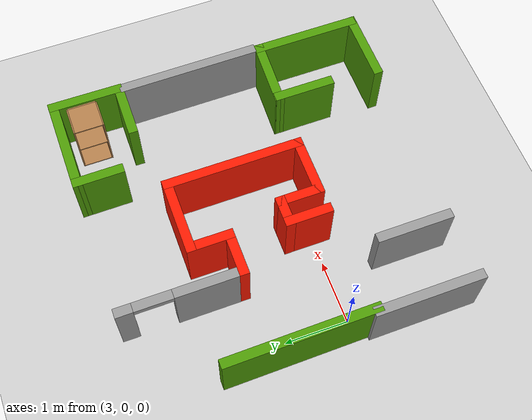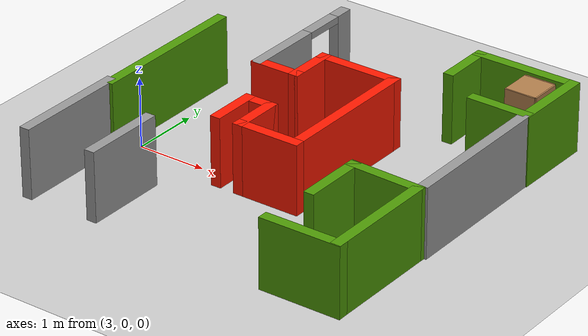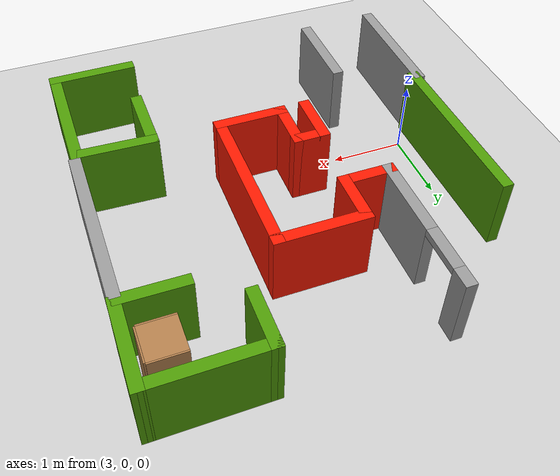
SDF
<sdf version="1.6">
 <world name="default">
  <model name="ground_plane">
   <static>1</static>
   <link name="link">
    <collision name="collision">
     <geometry><plane><normal>0 0 1</normal><size>100 100</size></plane></geometry>
     <surface><friction><ode><mu>100</mu><mu2>50</mu2></ode></friction></surface>
    </collision>
    <visual name="visual">
     <cast_shadows>0</cast_shadows>
     <geometry><plane><normal>0 0 1</normal><size>100 100</size></plane></geometry>
     <material>
      <script><uri>file://media/materials/scripts/gazebo.material</uri><name>Gazebo/Grey</name></script>
     </material>
    </visual>
   </link>
  </model>
  <model name="final_maze_v2">
   <link name="Wall_29">
    <pose>0.877343 -1.70359 0 0 0 -1.5708</pose>
    <inertial>
     <inertia><ixx>0</ixx><ixy>0</ixy><ixz>0</ixz><iyy>0</iyy><iyz>0</iyz><izz>0</izz></inertia>
     <mass>0</mass>
    </inertial>
    <visual name="Wall_29_Visual">
     <pose>0 0 0.5 0 -0 0</pose>
     <geometry><box><size>1.71998 0.15 1</size></box></geometry>
     <material>
      <script><uri>file://media/materials/scripts/gazebo.material</uri><name>Gazebo/Grey</name></script>
      <ambient>1 1 1 1</ambient>
      <shader type="pixel"/>
     </material>
     <meta><layer>0</layer></meta>
    </visual>
    <collision name="Wall_29_Collision">
     <pose>0 0 0.5 0 -0 0</pose>
     <geometry><box><size>1.71998 0.15 1</size></box></geometry>
     <surface>
      <friction>
       <ode><mu>1</mu><mu2>1</mu2><fdir1>0 0 0</fdir1><slip1>0</slip1><slip2>0</slip2></ode>
       <torsional>
        <coefficient>1</coefficient>
        <patch_radius>0</patch_radius>
        <surface_radius>0</surface_radius>
        <use_patch_radius>1</use_patch_radius>
        <ode><slip>0</slip></ode>
       </torsional>
      </friction>
      <bounce><restitution_coefficient>0</restitution_coefficient><threshold>1e+06</threshold></bounce>
      <contact>
       <collide_without_contact>0</collide_without_contact>
       <collide_without_contact_bitmask>1</collide_without_contact_bitmask>
       <collide_bitmask>1</collide_bitmask>
       <ode>
        <soft_cfm>0</soft_cfm>
        <soft_erp>0.2</soft_erp>
        <kp>1e+13</kp>
        <kd>1</kd>
        <max_vel>0.01</max_vel>
        <min_depth>0</min_depth>
       </ode>
       <bullet>
        <split_impulse>1</split_impulse>
        <split_impulse_penetration_threshold>-0.01</split_impulse_penetration_threshold>
        <soft_cfm>0</soft_cfm>
        <soft_erp>0.2</soft_erp>
        <kp>1e+13</kp>
        <kd>1</kd>
       </bullet>
      </contact>
     </surface>
    </collision>
   </link>
   <link name="Wall_29_clone">
    <pose>1.90614 -1.93473 0 0 0 -1.5708</pose>
    <inertial>
     <inertia><ixx>0</ixx><ixy>0</ixy><ixz>0</ixz><iyy>0</iyy><iyz>0</iyz><izz>0</izz></inertia>
     <mass>0</mass>
    </inertial>
    <visual name="Wall_29_Visual">
     <pose>0 0 0.5 0 -0 0</pose>
     <geometry><box><size>1.20691 0.15 1</size></box></geometry>
     <material>
      <script><uri>file://media/materials/scripts/gazebo.material</uri><name>Gazebo/Grey</name></script>
      <ambient>1 1 1 1</ambient>
      <shader type="pixel"/>
     </material>
     <meta><layer>0</layer></meta>
    </visual>
    <collision name="Wall_29_Collision">
     <pose>0 0 0.5 0 -0 0</pose>
     <geometry><box><size>1.20691 0.15 1</size></box></geometry>
     <surface>
      <friction>
       <ode><mu>1</mu><mu2>1</mu2><fdir1>0 0 0</fdir1><slip1>0</slip1><slip2>0</slip2></ode>
       <torsional>
        <coefficient>1</coefficient>
        <patch_radius>0</patch_radius>
        <surface_radius>0</surface_radius>
        <use_patch_radius>1</use_patch_radius>
        <ode><slip>0</slip></ode>
       </torsional>
      </friction>
      <bounce><restitution_coefficient>0</restitution_coefficient><threshold>1e+06</threshold></bounce>
      <contact>
       <collide_without_contact>0</collide_without_contact>
       <collide_without_contact_bitmask>1</collide_without_contact_bitmask>
       <collide_bitmask>1</collide_bitmask>
       <ode>
        <soft_cfm>0</soft_cfm>
        <soft_erp>0.2</soft_erp>
        <kp>1e+13</kp>
        <kd>1</kd>
        <max_vel>0.01</max_vel>
        <min_depth>0</min_depth>
       </ode>
       <bullet>
        <split_impulse>1</split_impulse>
        <split_impulse_penetration_threshold>-0.01</split_impulse_penetration_threshold>
        <soft_cfm>0</soft_cfm>
        <soft_erp>0.2</soft_erp>
        <kp>1e+13</kp>
        <kd>1</kd>
       </bullet>
      </contact>
     </surface>
    </collision>
   </link>
   <link name="Wall_39">
    <pose>2.10527 1.58161 0 0 0 -1.5708</pose>
    <visual name="Wall_39_Visual_0">
     <pose>-0.864385 0 0.5 0 -0 0</pose>
     <geometry><box><size>0.27123 0.15 1</size></box></geometry>
     <material>
      <script><uri>file://media/materials/scripts/gazebo.material</uri><name>Gazebo/Grey</name></script>
      <ambient>1 1 1 1</ambient>
      <shader type="pixel"/>
     </material>
     <meta><layer>0</layer></meta>
    </visual>
    <visual name="Wall_39_Visual_1">
     <pose>0.435615 0 0.5 0 -0 0</pose>
     <geometry><box><size>1.12877 0.15 1</size></box></geometry>
     <material>
      <script><uri>file://media/materials/scripts/gazebo.material</uri><name>Gazebo/Grey</name></script>
      <ambient>1 1 1 1</ambient>
      <shader type="pixel"/>
     </material>
     <meta><layer>0</layer></meta>
    </visual>
    <visual name="Wall_39_Visual_2">
     <pose>-0.42877 0 0.95 0 -0 0</pose>
     <geometry><box><size>0.6 0.15 0.1</size></box></geometry>
     <material>
      <script><uri>file://media/materials/scripts/gazebo.material</uri><name>Gazebo/Grey</name></script>
      <ambient>1 1 1 1</ambient>
      <shader type="pixel"/>
     </material>
     <meta><layer>0</layer></meta>
    </visual>
    <collision name="Wall_39_Collision_2">
     <pose>-0.42877 0 0.95 0 -0 0</pose>
     <geometry><box><size>0.6 0.15 0.1</size></box></geometry>
     <surface>
      <friction>
       <ode><mu>1</mu><mu2>1</mu2><fdir1>0 0 0</fdir1><slip1>0</slip1><slip2>0</slip2></ode>
       <torsional>
        <coefficient>1</coefficient>
        <patch_radius>0</patch_radius>
        <surface_radius>0</surface_radius>
        <use_patch_radius>1</use_patch_radius>
        <ode><slip>0</slip></ode>
       </torsional>
      </friction>
      <bounce><restitution_coefficient>0</restitution_coefficient><threshold>1e+06</threshold></bounce>
      <contact>
       <collide_without_contact>0</collide_without_contact>
       <collide_without_contact_bitmask>1</collide_without_contact_bitmask>
       <collide_bitmask>1</collide_bitmask>
       <ode>
        <soft_cfm>0</soft_cfm>
        <soft_erp>0.2</soft_erp>
        <kp>1e+13</kp>
        <kd>1</kd>
        <max_vel>0.01</max_vel>
        <min_depth>0</min_depth>
       </ode>
       <bullet>
        <split_impulse>1</split_impulse>
        <split_impulse_penetration_threshold>-0.01</split_impulse_penetration_threshold>
        <soft_cfm>0</soft_cfm>
        <soft_erp>0.2</soft_erp>
        <kp>1e+13</kp>
        <kd>1</kd>
       </bullet>
      </contact>
     </surface>
    </collision>
    <collision name="Wall_39_Collision_0">
     <pose>-0.864385 0 0.5 0 -0 0</pose>
     <geometry><box><size>0.27123 0.15 1</size></box></geometry>
     <surface>
      <friction>
       <ode><mu>1</mu><mu2>1</mu2><fdir1>0 0 0</fdir1><slip1>0</slip1><slip2>0</slip2></ode>
       <torsional>
        <coefficient>1</coefficient>
        <patch_radius>0</patch_radius>
        <surface_radius>0</surface_radius>
        <use_patch_radius>1</use_patch_radius>
        <ode><slip>0</slip></ode>
       </torsional>
      </friction>
      <bounce><restitution_coefficient>0</restitution_coefficient><threshold>1e+06</threshold></bounce>
      <contact>
       <collide_without_contact>0</collide_without_contact>
       <collide_without_contact_bitmask>1</collide_without_contact_bitmask>
       <collide_bitmask>1</collide_bitmask>
       <ode>
        <soft_cfm>0</soft_cfm>
        <soft_erp>0.2</soft_erp>
        <kp>1e+13</kp>
        <kd>1</kd>
        <max_vel>0.01</max_vel>
        <min_depth>0</min_depth>
       </ode>
       <bullet>
        <split_impulse>1</split_impulse>
        <split_impulse_penetration_threshold>-0.01</split_impulse_penetration_threshold>
        <soft_cfm>0</soft_cfm>
        <soft_erp>0.2</soft_erp>
        <kp>1e+13</kp>
        <kd>1</kd>
       </bullet>
      </contact>
     </surface>
    </collision>
    <collision name="Wall_39_Collision_1">
     <pose>0.435615 0 0.5 0 -0 0</pose>
     <geometry><box><size>1.12877 0.15 1</size></box></geometry>
     <surface>
      <friction>
       <ode><mu>1</mu><mu2>1</mu2><fdir1>0 0 0</fdir1><slip1>0</slip1><slip2>0</slip2></ode>
       <torsional>
        <coefficient>1</coefficient>
        <patch_radius>0</patch_radius>
        <surface_radius>0</surface_radius>
        <use_patch_radius>1</use_patch_radius>
        <ode><slip>0</slip></ode>
       </torsional>
      </friction>
      <bounce><restitution_coefficient>0</restitution_coefficient><threshold>1e+06</threshold></bounce>
      <contact>
       <collide_without_contact>0</collide_without_contact>
       <collide_without_contact_bitmask>1</collide_without_contact_bitmask>
       <collide_bitmask>1</collide_bitmask>
       <ode>
        <soft_cfm>0</soft_cfm>
        <soft_erp>0.2</soft_erp>
        <kp>1e+13</kp>
        <kd>1</kd>
        <max_vel>0.01</max_vel>
        <min_depth>0</min_depth>
       </ode>
       <bullet>
        <split_impulse>1</split_impulse>
        <split_impulse_penetration_threshold>-0.01</split_impulse_penetration_threshold>
        <soft_cfm>0</soft_cfm>
        <soft_erp>0.2</soft_erp>
        <kp>1e+13</kp>
        <kd>1</kd>
       </bullet>
      </contact>
     </surface>
    </collision>
   </link>
   <link name="Wall_40">
    <pose>2.40526 0.656606 0 0 -0 0</pose>
    <visual name="Wall_40_Visual">
     <pose>0 0 0.5 0 -0 0</pose>
     <geometry><box><size>0.75 0.15 1</size></box></geometry>
     <material>
      <script><uri>file://media/materials/scripts/gazebo.material</uri><name>Gazebo/Grey</name></script>
      <ambient>1 0.0980392 0 1</ambient>
      <shader type="pixel"/>
     </material>
     <meta><layer>0</layer></meta>
    </visual>
    <collision name="Wall_40_Collision">
     <pose>0 0 0.5 0 -0 0</pose>
     <geometry><box><size>0.75 0.15 1</size></box></geometry>
     <surface>
      <friction>
       <ode><mu>1</mu><mu2>1</mu2><fdir1>0 0 0</fdir1><slip1>0</slip1><slip2>0</slip2></ode>
       <torsional>
        <coefficient>1</coefficient>
        <patch_radius>0</patch_radius>
        <surface_radius>0</surface_radius>
        <use_patch_radius>1</use_patch_radius>
        <ode><slip>0</slip></ode>
       </torsional>
      </friction>
      <bounce><restitution_coefficient>0</restitution_coefficient><threshold>1e+06</threshold></bounce>
      <contact>
       <collide_without_contact>0</collide_without_contact>
       <collide_without_contact_bitmask>1</collide_without_contact_bitmask>
       <collide_bitmask>1</collide_bitmask>
       <ode>
        <soft_cfm>0</soft_cfm>
        <soft_erp>0.2</soft_erp>
        <kp>1e+13</kp>
        <kd>1</kd>
        <max_vel>0.01</max_vel>
        <min_depth>0</min_depth>
       </ode>
       <bullet>
        <split_impulse>1</split_impulse>
        <split_impulse_penetration_threshold>-0.01</split_impulse_penetration_threshold>
        <soft_cfm>0</soft_cfm>
        <soft_erp>0.2</soft_erp>
        <kp>1e+13</kp>
        <kd>1</kd>
       </bullet>
      </contact>
     </surface>
    </collision>
   </link>
   <link name="Wall_41">
    <pose>2.70526 0.956606 0 0 -0 1.5708</pose>
    <visual name="Wall_41_Visual">
     <pose>0 0 0.5 0 -0 0</pose>
     <geometry><box><size>0.75 0.15 1</size></box></geometry>
     <material>
      <script><uri>file://media/materials/scripts/gazebo.material</uri><name>Gazebo/Grey</name></script>
      <ambient>1 0.0980392 0 1</ambient>
      <shader type="pixel"/>
     </material>
     <meta><layer>0</layer></meta>
    </visual>
    <collision name="Wall_41_Collision">
     <pose>0 0 0.5 0 -0 0</pose>
     <geometry><box><size>0.75 0.15 1</size></box></geometry>
     <surface>
      <friction>
       <ode><mu>1</mu><mu2>1</mu2><fdir1>0 0 0</fdir1><slip1>0</slip1><slip2>0</slip2></ode>
       <torsional>
        <coefficient>1</coefficient>
        <patch_radius>0</patch_radius>
        <surface_radius>0</surface_radius>
        <use_patch_radius>1</use_patch_radius>
        <ode><slip>0</slip></ode>
       </torsional>
      </friction>
      <bounce><restitution_coefficient>0</restitution_coefficient><threshold>1e+06</threshold></bounce>
      <contact>
       <collide_without_contact>0</collide_without_contact>
       <collide_without_contact_bitmask>1</collide_without_contact_bitmask>
       <collide_bitmask>1</collide_bitmask>
       <ode>
        <soft_cfm>0</soft_cfm>
        <soft_erp>0.2</soft_erp>
        <kp>1e+13</kp>
        <kd>1</kd>
        <max_vel>0.01</max_vel>
        <min_depth>0</min_depth>
       </ode>
       <bullet>
        <split_impulse>1</split_impulse>
        <split_impulse_penetration_threshold>-0.01</split_impulse_penetration_threshold>
        <soft_cfm>0</soft_cfm>
        <soft_erp>0.2</soft_erp>
        <kp>1e+13</kp>
        <kd>1</kd>
       </bullet>
      </contact>
     </surface>
    </collision>
   </link>
   <link name="Wall_42">
    <pose>3.25527 1.25661 0 0 -0 0</pose>
    <visual name="Wall_42_Visual">
     <pose>0 0 0.5 0 -0 0</pose>
     <geometry><box><size>1.25 0.15 1</size></box></geometry>
     <material>
      <script><uri>file://media/materials/scripts/gazebo.material</uri><name>Gazebo/Grey</name></script>
      <ambient>1 0.0980392 0 1</ambient>
      <shader type="pixel"/>
     </material>
     <meta><layer>0</layer></meta>
    </visual>
    <collision name="Wall_42_Collision">
     <pose>0 0 0.5 0 -0 0</pose>
     <geometry><box><size>1.25 0.15 1</size></box></geometry>
     <surface>
      <friction>
       <ode><mu>1</mu><mu2>1</mu2><fdir1>0 0 0</fdir1><slip1>0</slip1><slip2>0</slip2></ode>
       <torsional>
        <coefficient>1</coefficient>
        <patch_radius>0</patch_radius>
        <surface_radius>0</surface_radius>
        <use_patch_radius>1</use_patch_radius>
        <ode><slip>0</slip></ode>
       </torsional>
      </friction>
      <bounce><restitution_coefficient>0</restitution_coefficient><threshold>1e+06</threshold></bounce>
      <contact>
       <collide_without_contact>0</collide_without_contact>
       <collide_without_contact_bitmask>1</collide_without_contact_bitmask>
       <collide_bitmask>1</collide_bitmask>
       <ode>
        <soft_cfm>0</soft_cfm>
        <soft_erp>0.2</soft_erp>
        <kp>1e+13</kp>
        <kd>1</kd>
        <max_vel>0.01</max_vel>
        <min_depth>0</min_depth>
       </ode>
       <bullet>
        <split_impulse>1</split_impulse>
        <split_impulse_penetration_threshold>-0.01</split_impulse_penetration_threshold>
        <soft_cfm>0</soft_cfm>
        <soft_erp>0.2</soft_erp>
        <kp>1e+13</kp>
        <kd>1</kd>
       </bullet>
      </contact>
     </surface>
    </collision>
   </link>
   <link name="Wall_43">
    <pose>3.80526 0.206606 0 0 0 -1.5708</pose>
    <visual name="Wall_43_Visual">
     <pose>0 0 0.5 0 -0 0</pose>
     <geometry><box><size>2.25 0.15 1</size></box></geometry>
     <material>
      <script><uri>file://media/materials/scripts/gazebo.material</uri><name>Gazebo/Grey</name></script>
      <ambient>1 0.0980392 0 1</ambient>
      <shader type="pixel"/>
     </material>
     <meta><layer>0</layer></meta>
    </visual>
    <collision name="Wall_43_Collision">
     <pose>0 0 0.5 0 -0 0</pose>
     <geometry><box><size>2.25 0.15 1</size></box></geometry>
     <surface>
      <friction>
       <ode><mu>1</mu><mu2>1</mu2><fdir1>0 0 0</fdir1><slip1>0</slip1><slip2>0</slip2></ode>
       <torsional>
        <coefficient>1</coefficient>
        <patch_radius>0</patch_radius>
        <surface_radius>0</surface_radius>
        <use_patch_radius>1</use_patch_radius>
        <ode><slip>0</slip></ode>
       </torsional>
      </friction>
      <bounce><restitution_coefficient>0</restitution_coefficient><threshold>1e+06</threshold></bounce>
      <contact>
       <collide_without_contact>0</collide_without_contact>
       <collide_without_contact_bitmask>1</collide_without_contact_bitmask>
       <collide_bitmask>1</collide_bitmask>
       <ode>
        <soft_cfm>0</soft_cfm>
        <soft_erp>0.2</soft_erp>
        <kp>1e+13</kp>
        <kd>1</kd>
        <max_vel>0.01</max_vel>
        <min_depth>0</min_depth>
       </ode>
       <bullet>
        <split_impulse>1</split_impulse>
        <split_impulse_penetration_threshold>-0.01</split_impulse_penetration_threshold>
        <soft_cfm>0</soft_cfm>
        <soft_erp>0.2</soft_erp>
        <kp>1e+13</kp>
        <kd>1</kd>
       </bullet>
      </contact>
     </surface>
    </collision>
   </link>
   <link name="Wall_44">
    <pose>3.38027 -0.843394 0 0 -0 3.14159</pose>
    <visual name="Wall_44_Visual">
     <pose>0 0 0.5 0 -0 0</pose>
     <geometry><box><size>1 0.15 1</size></box></geometry>
     <material>
      <script><uri>file://media/materials/scripts/gazebo.material</uri><name>Gazebo/Grey</name></script>
      <ambient>1 0.0980392 0 1</ambient>
      <shader type="pixel"/>
     </material>
     <meta><layer>0</layer></meta>
    </visual>
    <collision name="Wall_44_Collision">
     <pose>0 0 0.5 0 -0 0</pose>
     <geometry><box><size>1 0.15 1</size></box></geometry>
     <surface>
      <friction>
       <ode><mu>1</mu><mu2>1</mu2><fdir1>0 0 0</fdir1><slip1>0</slip1><slip2>0</slip2></ode>
       <torsional>
        <coefficient>1</coefficient>
        <patch_radius>0</patch_radius>
        <surface_radius>0</surface_radius>
        <use_patch_radius>1</use_patch_radius>
        <ode><slip>0</slip></ode>
       </torsional>
      </friction>
      <bounce><restitution_coefficient>0</restitution_coefficient><threshold>1e+06</threshold></bounce>
      <contact>
       <collide_without_contact>0</collide_without_contact>
       <collide_without_contact_bitmask>1</collide_without_contact_bitmask>
       <collide_bitmask>1</collide_bitmask>
       <ode>
        <soft_cfm>0</soft_cfm>
        <soft_erp>0.2</soft_erp>
        <kp>1e+13</kp>
        <kd>1</kd>
        <max_vel>0.01</max_vel>
        <min_depth>0</min_depth>
       </ode>
       <bullet>
        <split_impulse>1</split_impulse>
        <split_impulse_penetration_threshold>-0.01</split_impulse_penetration_threshold>
        <soft_cfm>0</soft_cfm>
        <soft_erp>0.2</soft_erp>
        <kp>1e+13</kp>
        <kd>1</kd>
       </bullet>
      </contact>
     </surface>
    </collision>
   </link>
   <link name="Wall_45">
    <pose>2.95526 -0.543394 0 0 -0 1.5708</pose>
    <visual name="Wall_45_Visual">
     <pose>0 0 0.5 0 -0 0</pose>
     <geometry><box><size>0.75 0.15 1</size></box></geometry>
     <material>
      <script><uri>file://media/materials/scripts/gazebo.material</uri><name>Gazebo/Grey</name></script>
      <ambient>1 0.0980392 0 1</ambient>
      <shader type="pixel"/>
     </material>
     <meta><layer>0</layer></meta>
    </visual>
    <collision name="Wall_45_Collision">
     <pose>0 0 0.5 0 -0 0</pose>
     <geometry><box><size>0.75 0.15 1</size></box></geometry>
     <surface>
      <friction>
       <ode><mu>1</mu><mu2>1</mu2><fdir1>0 0 0</fdir1><slip1>0</slip1><slip2>0</slip2></ode>
       <torsional>
        <coefficient>1</coefficient>
        <patch_radius>0</patch_radius>
        <surface_radius>0</surface_radius>
        <use_patch_radius>1</use_patch_radius>
        <ode><slip>0</slip></ode>
       </torsional>
      </friction>
      <bounce><restitution_coefficient>0</restitution_coefficient><threshold>1e+06</threshold></bounce>
      <contact>
       <collide_without_contact>0</collide_without_contact>
       <collide_without_contact_bitmask>1</collide_without_contact_bitmask>
       <collide_bitmask>1</collide_bitmask>
       <ode>
        <soft_cfm>0</soft_cfm>
        <soft_erp>0.2</soft_erp>
        <kp>1e+13</kp>
        <kd>1</kd>
        <max_vel>0.01</max_vel>
        <min_depth>0</min_depth>
       </ode>
       <bullet>
        <split_impulse>1</split_impulse>
        <split_impulse_penetration_threshold>-0.01</split_impulse_penetration_threshold>
        <soft_cfm>0</soft_cfm>
        <soft_erp>0.2</soft_erp>
        <kp>1e+13</kp>
        <kd>1</kd>
       </bullet>
      </contact>
     </surface>
    </collision>
   </link>
   <link name="Wall_46">
    <pose>2.78026 -0.243394 0 0 -0 3.14159</pose>
    <visual name="Wall_46_Visual">
     <pose>0 0 0.5 0 -0 0</pose>
     <geometry><box><size>0.5 0.15 1</size></box></geometry>
     <material>
      <script><uri>file://media/materials/scripts/gazebo.material</uri><name>Gazebo/Grey</name></script>
      <ambient>1 0.0980392 0 1</ambient>
      <shader type="pixel"/>
     </material>
     <meta><layer>0</layer></meta>
    </visual>
    <collision name="Wall_46_Collision">
     <pose>0 0 0.5 0 -0 0</pose>
     <geometry><box><size>0.5 0.15 1</size></box></geometry>
     <surface>
      <friction>
       <ode><mu>1</mu><mu2>1</mu2><fdir1>0 0 0</fdir1><slip1>0</slip1><slip2>0</slip2></ode>
       <torsional>
        <coefficient>1</coefficient>
        <patch_radius>0</patch_radius>
        <surface_radius>0</surface_radius>
        <use_patch_radius>1</use_patch_radius>
        <ode><slip>0</slip></ode>
       </torsional>
      </friction>
      <bounce><restitution_coefficient>0</restitution_coefficient><threshold>1e+06</threshold></bounce>
      <contact>
       <collide_without_contact>0</collide_without_contact>
       <collide_without_contact_bitmask>1</collide_without_contact_bitmask>
       <collide_bitmask>1</collide_bitmask>
       <ode>
        <soft_cfm>0</soft_cfm>
        <soft_erp>0.2</soft_erp>
        <kp>1e+13</kp>
        <kd>1</kd>
        <max_vel>0.01</max_vel>
        <min_depth>0</min_depth>
       </ode>
       <bullet>
        <split_impulse>1</split_impulse>
        <split_impulse_penetration_threshold>-0.01</split_impulse_penetration_threshold>
        <soft_cfm>0</soft_cfm>
        <soft_erp>0.2</soft_erp>
        <kp>1e+13</kp>
        <kd>1</kd>
       </bullet>
      </contact>
     </surface>
    </collision>
   </link>
   <link name="Wall_47">
    <pose>2.60527 -0.543394 0 0 0 -1.5708</pose>
    <visual name="Wall_47_Visual">
     <pose>0 0 0.5 0 -0 0</pose>
     <geometry><box><size>0.75 0.15 1</size></box></geometry>
     <material>
      <script><uri>file://media/materials/scripts/gazebo.material</uri><name>Gazebo/Grey</name></script>
      <ambient>1 0.0980392 0 1</ambient>
      <shader type="pixel"/>
     </material>
     <meta><layer>0</layer></meta>
    </visual>
    <collision name="Wall_47_Collision">
     <pose>0 0 0.5 0 -0 0</pose>
     <geometry><box><size>0.75 0.15 1</size></box></geometry>
     <surface>
      <friction>
       <ode><mu>1</mu><mu2>1</mu2><fdir1>0 0 0</fdir1><slip1>0</slip1><slip2>0</slip2></ode>
       <torsional>
        <coefficient>1</coefficient>
        <patch_radius>0</patch_radius>
        <surface_radius>0</surface_radius>
        <use_patch_radius>1</use_patch_radius>
        <ode><slip>0</slip></ode>
       </torsional>
      </friction>
      <bounce><restitution_coefficient>0</restitution_coefficient><threshold>1e+06</threshold></bounce>
      <contact>
       <collide_without_contact>0</collide_without_contact>
       <collide_without_contact_bitmask>1</collide_without_contact_bitmask>
       <collide_bitmask>1</collide_bitmask>
       <ode>
        <soft_cfm>0</soft_cfm>
        <soft_erp>0.2</soft_erp>
        <kp>1e+13</kp>
        <kd>1</kd>
        <max_vel>0.01</max_vel>
        <min_depth>0</min_depth>
       </ode>
       <bullet>
        <split_impulse>1</split_impulse>
        <split_impulse_penetration_threshold>-0.01</split_impulse_penetration_threshold>
        <soft_cfm>0</soft_cfm>
        <soft_erp>0.2</soft_erp>
        <kp>1e+13</kp>
        <kd>1</kd>
       </bullet>
      </contact>
     </surface>
    </collision>
   </link>
   <link name="Wall_5">
    <pose>5.69877 0.301308 0 0 -0 1.57478</pose>
    <inertial>
     <inertia><ixx>0</ixx><ixy>0</ixy><ixz>0</ixz><iyy>0</iyy><iyz>0</iyz><izz>0</izz></inertia>
     <mass>0</mass>
    </inertial>
    <visual name="Wall_5_Visual">
     <pose>0 0 0.5 0 -0 0</pose>
     <geometry><box><size>2.27649 0.15 1</size></box></geometry>
     <material>
      <script><uri>file://media/materials/scripts/gazebo.material</uri><name>Gazebo/Grey</name></script>
      <ambient>1 1 1 1</ambient>
      <shader type="pixel"/>
     </material>
     <meta><layer>0</layer></meta>
    </visual>
    <collision name="Wall_5_Collision">
     <pose>0 0 0.5 0 -0 0</pose>
     <geometry><box><size>2.27649 0.15 1</size></box></geometry>
     <surface>
      <friction>
       <ode><mu>1</mu><mu2>1</mu2><fdir1>0 0 0</fdir1><slip1>0</slip1><slip2>0</slip2></ode>
       <torsional>
        <coefficient>1</coefficient>
        <patch_radius>0</patch_radius>
        <surface_radius>0</surface_radius>
        <use_patch_radius>1</use_patch_radius>
        <ode><slip>0</slip></ode>
       </torsional>
      </friction>
      <bounce><restitution_coefficient>0</restitution_coefficient><threshold>1e+06</threshold></bounce>
      <contact>
       <collide_without_contact>0</collide_without_contact>
       <collide_without_contact_bitmask>1</collide_without_contact_bitmask>
       <collide_bitmask>1</collide_bitmask>
       <ode>
        <soft_cfm>0</soft_cfm>
        <soft_erp>0.2</soft_erp>
        <kp>1e+13</kp>
        <kd>1</kd>
        <max_vel>0.01</max_vel>
        <min_depth>0</min_depth>
       </ode>
       <bullet>
        <split_impulse>1</split_impulse>
        <split_impulse_penetration_threshold>-0.01</split_impulse_penetration_threshold>
        <soft_cfm>0</soft_cfm>
        <soft_erp>0.2</soft_erp>
        <kp>1e+13</kp>
        <kd>1</kd>
       </bullet>
      </contact>
     </surface>
    </collision>
   </link>
   <link name="Wall_51">
    <pose>5.30682 1.46374 0 0 -0 3.12962</pose>
    <inertial>
     <inertia><ixx>0</ixx><ixy>0</ixy><ixz>0</ixz><iyy>0</iyy><iyz>0</iyz><izz>0</izz></inertia>
     <mass>0</mass>
    </inertial>
    <visual name="Wall_51_Visual">
     <pose>0 0 0.5 0 -0 0</pose>
     <geometry><box><size>0.919672 0.15 1</size></box></geometry>
     <material>
      <script><uri>file://media/materials/scripts/gazebo.material</uri><name>Gazebo/Grey</name></script>
      <ambient>0.305882 0.603922 0.0235294 1</ambient>
      <shader type="pixel"/>
     </material>
     <meta><layer>0</layer></meta>
    </visual>
    <collision name="Wall_51_Collision">
     <pose>0 0 0.5 0 -0 0</pose>
     <geometry><box><size>0.919672 0.15 1</size></box></geometry>
     <surface>
      <friction>
       <ode><mu>1</mu><mu2>1</mu2><fdir1>0 0 0</fdir1><slip1>0</slip1><slip2>0</slip2></ode>
       <torsional>
        <coefficient>1</coefficient>
        <patch_radius>0</patch_radius>
        <surface_radius>0</surface_radius>
        <use_patch_radius>1</use_patch_radius>
        <ode><slip>0</slip></ode>
       </torsional>
      </friction>
      <bounce><restitution_coefficient>0</restitution_coefficient><threshold>1e+06</threshold></bounce>
      <contact>
       <collide_without_contact>0</collide_without_contact>
       <collide_without_contact_bitmask>1</collide_without_contact_bitmask>
       <collide_bitmask>1</collide_bitmask>
       <ode>
        <soft_cfm>0</soft_cfm>
        <soft_erp>0.2</soft_erp>
        <kp>1e+13</kp>
        <kd>1</kd>
        <max_vel>0.01</max_vel>
        <min_depth>0</min_depth>
       </ode>
       <bullet>
        <split_impulse>1</split_impulse>
        <split_impulse_penetration_threshold>-0.01</split_impulse_penetration_threshold>
        <soft_cfm>0</soft_cfm>
        <soft_erp>0.2</soft_erp>
        <kp>1e+13</kp>
        <kd>1</kd>
       </bullet>
      </contact>
     </surface>
    </collision>
   </link>
   <link name="Wall_53">
    <pose>5.18576 -0.885394 0 0 -0 3.10446</pose>
    <visual name="Wall_53_Visual">
     <pose>0 0 0.5 0 -0 0</pose>
     <geometry><box><size>1.11967 0.15 1</size></box></geometry>
     <material>
      <script><uri>file://media/materials/scripts/gazebo.material</uri><name>Gazebo/Grey</name></script>
      <ambient>0.305882 0.603922 0.0235294 1</ambient>
      <shader type="pixel"/>
     </material>
     <meta><layer>0</layer></meta>
    </visual>
    <collision name="Wall_53_Collision">
     <pose>0 0 0.5 0 -0 0</pose>
     <geometry><box><size>1.11967 0.15 1</size></box></geometry>
     <surface>
      <friction>
       <ode><mu>1</mu><mu2>1</mu2><fdir1>0 0 0</fdir1><slip1>0</slip1><slip2>0</slip2></ode>
       <torsional>
        <coefficient>1</coefficient>
        <patch_radius>0</patch_radius>
        <surface_radius>0</surface_radius>
        <use_patch_radius>1</use_patch_radius>
        <ode><slip>0</slip></ode>
       </torsional>
      </friction>
      <bounce><restitution_coefficient>0</restitution_coefficient><threshold>1e+06</threshold></bounce>
      <contact>
       <collide_without_contact>0</collide_without_contact>
       <collide_without_contact_bitmask>1</collide_without_contact_bitmask>
       <collide_bitmask>1</collide_bitmask>
       <ode>
        <soft_cfm>0</soft_cfm>
        <soft_erp>0.2</soft_erp>
        <kp>1e+13</kp>
        <kd>1</kd>
        <max_vel>0.01</max_vel>
        <min_depth>0</min_depth>
       </ode>
       <bullet>
        <split_impulse>1</split_impulse>
        <split_impulse_penetration_threshold>-0.01</split_impulse_penetration_threshold>
        <soft_cfm>0</soft_cfm>
        <soft_erp>0.2</soft_erp>
        <kp>1e+13</kp>
        <kd>1</kd>
       </bullet>
      </contact>
     </surface>
    </collision>
   </link>
   <link name="Wall_53_clone">
    <pose>5.15405 -2.52119 0 0 0 -3.13583</pose>
    <inertial>
     <inertia><ixx>0</ixx><ixy>0</ixy><ixz>0</ixz><iyy>0</iyy><iyz>0</iyz><izz>0</izz></inertia>
     <mass>0</mass>
    </inertial>
    <visual name="Wall_53_Visual">
     <pose>0 0 0.5 0 -0 0</pose>
     <geometry><box><size>1.18538 0.15 1</size></box></geometry>
     <material>
      <script><uri>file://media/materials/scripts/gazebo.material</uri><name>Gazebo/Grey</name></script>
      <ambient>0.305882 0.603922 0.0235294 1</ambient>
      <shader type="pixel"/>
     </material>
     <meta><layer>0</layer></meta>
    </visual>
    <collision name="Wall_53_Collision">
     <pose>0 0 0.5 0 -0 0</pose>
     <geometry><box><size>1.18538 0.15 1</size></box></geometry>
     <surface>
      <friction>
       <ode><mu>1</mu><mu2>1</mu2><fdir1>0 0 0</fdir1><slip1>0</slip1><slip2>0</slip2></ode>
       <torsional>
        <coefficient>1</coefficient>
        <patch_radius>0</patch_radius>
        <surface_radius>0</surface_radius>
        <use_patch_radius>1</use_patch_radius>
        <ode><slip>0</slip></ode>
       </torsional>
      </friction>
      <bounce><restitution_coefficient>0</restitution_coefficient><threshold>1e+06</threshold></bounce>
      <contact>
       <collide_without_contact>0</collide_without_contact>
       <collide_without_contact_bitmask>1</collide_without_contact_bitmask>
       <collide_bitmask>1</collide_bitmask>
       <ode>
        <soft_cfm>0</soft_cfm>
        <soft_erp>0.2</soft_erp>
        <kp>1e+13</kp>
        <kd>1</kd>
        <max_vel>0.01</max_vel>
        <min_depth>0</min_depth>
       </ode>
       <bullet>
        <split_impulse>1</split_impulse>
        <split_impulse_penetration_threshold>-0.01</split_impulse_penetration_threshold>
        <soft_cfm>0</soft_cfm>
        <soft_erp>0.2</soft_erp>
        <kp>1e+13</kp>
        <kd>1</kd>
       </bullet>
      </contact>
     </surface>
    </collision>
   </link>
   <link name="Wall_54">
    <pose>4.7009 -1.29697 0 0 0 -1.5708</pose>
    <inertial>
     <inertia><ixx>0</ixx><ixy>0</ixy><ixz>0</ixz><iyy>0</iyy><iyz>0</iyz><izz>0</izz></inertia>
     <mass>0</mass>
    </inertial>
    <visual name="Wall_54_Visual">
     <pose>0 0 0.5 0 -0 0</pose>
     <geometry><box><size>0.982963 0.15 1</size></box></geometry>
     <material>
      <script><uri>file://media/materials/scripts/gazebo.material</uri><name>Gazebo/Grey</name></script>
      <ambient>0.305882 0.603922 0.0235294 1</ambient>
      <shader type="pixel"/>
     </material>
     <meta><layer>0</layer></meta>
    </visual>
    <collision name="Wall_54_Collision">
     <pose>0 0 0.5 0 -0 0</pose>
     <geometry><box><size>0.982963 0.15 1</size></box></geometry>
     <surface>
      <friction>
       <ode><mu>1</mu><mu2>1</mu2><fdir1>0 0 0</fdir1><slip1>0</slip1><slip2>0</slip2></ode>
       <torsional>
        <coefficient>1</coefficient>
        <patch_radius>0</patch_radius>
        <surface_radius>0</surface_radius>
        <use_patch_radius>1</use_patch_radius>
        <ode><slip>0</slip></ode>
       </torsional>
      </friction>
      <bounce><restitution_coefficient>0</restitution_coefficient><threshold>1e+06</threshold></bounce>
      <contact>
       <collide_without_contact>0</collide_without_contact>
       <collide_without_contact_bitmask>1</collide_without_contact_bitmask>
       <collide_bitmask>1</collide_bitmask>
       <ode>
        <soft_cfm>0</soft_cfm>
        <soft_erp>0.2</soft_erp>
        <kp>1e+13</kp>
        <kd>1</kd>
        <max_vel>0.01</max_vel>
        <min_depth>0</min_depth>
       </ode>
       <bullet>
        <split_impulse>1</split_impulse>
        <split_impulse_penetration_threshold>-0.01</split_impulse_penetration_threshold>
        <soft_cfm>0</soft_cfm>
        <soft_erp>0.2</soft_erp>
        <kp>1e+13</kp>
        <kd>1</kd>
       </bullet>
      </contact>
     </surface>
    </collision>
   </link>
   <link name="Wall_58">
    <pose>4.30126 2.18961 0 0 0 -1.56777</pose>
    <visual name="Wall_58_Visual">
     <pose>0 0 0.5 0 -0 0</pose>
     <geometry><box><size>0.810003 0.15 1</size></box></geometry>
     <material>
      <script><uri>file://media/materials/scripts/gazebo.material</uri><name>Gazebo/Grey</name></script>
      <ambient>0.305882 0.603922 0.0235294 1</ambient>
      <shader type="pixel"/>
     </material>
     <meta><layer>0</layer></meta>
    </visual>
    <collision name="Wall_58_Collision">
     <pose>0 0 0.5 0 -0 0</pose>
     <geometry><box><size>0.810003 0.15 1</size></box></geometry>
     <surface>
      <friction>
       <ode><mu>1</mu><mu2>1</mu2><fdir1>0 0 0</fdir1><slip1>0</slip1><slip2>0</slip2></ode>
       <torsional>
        <coefficient>1</coefficient>
        <patch_radius>0</patch_radius>
        <surface_radius>0</surface_radius>
        <use_patch_radius>1</use_patch_radius>
        <ode><slip>0</slip></ode>
       </torsional>
      </friction>
      <bounce><restitution_coefficient>0</restitution_coefficient><threshold>1e+06</threshold></bounce>
      <contact>
       <collide_without_contact>0</collide_without_contact>
       <collide_without_contact_bitmask>1</collide_without_contact_bitmask>
       <collide_bitmask>1</collide_bitmask>
       <ode>
        <soft_cfm>0</soft_cfm>
        <soft_erp>0.2</soft_erp>
        <kp>1e+13</kp>
        <kd>1</kd>
        <max_vel>0.01</max_vel>
        <min_depth>0</min_depth>
       </ode>
       <bullet>
        <split_impulse>1</split_impulse>
        <split_impulse_penetration_threshold>-0.01</split_impulse_penetration_threshold>
        <soft_cfm>0</soft_cfm>
        <soft_erp>0.2</soft_erp>
        <kp>1e+13</kp>
        <kd>1</kd>
       </bullet>
      </contact>
     </surface>
    </collision>
   </link>
   <link name="Wall_62">
    <pose>0.917765 0.215606 0 0 0 -1.56418</pose>
    <visual name="Wall_62_Visual">
     <pose>0 0 0.5 0 -0 0</pose>
     <geometry><box><size>2.41605 0.15 1</size></box></geometry>
     <material>
      <script><uri>file://media/materials/scripts/gazebo.material</uri><name>Gazebo/Grey</name></script>
      <ambient>0.305882 0.603922 0.0235294 1</ambient>
      <shader type="pixel"/>
     </material>
     <meta><layer>0</layer></meta>
    </visual>
    <collision name="Wall_62_Collision">
     <pose>0 0 0.5 0 -0 0</pose>
     <geometry><box><size>2.41605 0.15 1</size></box></geometry>
     <surface>
      <friction>
       <ode><mu>1</mu><mu2>1</mu2><fdir1>0 0 0</fdir1><slip1>0</slip1><slip2>0</slip2></ode>
       <torsional>
        <coefficient>1</coefficient>
        <patch_radius>0</patch_radius>
        <surface_radius>0</surface_radius>
        <use_patch_radius>1</use_patch_radius>
        <ode><slip>0</slip></ode>
       </torsional>
      </friction>
      <bounce><restitution_coefficient>0</restitution_coefficient><threshold>1e+06</threshold></bounce>
      <contact>
       <collide_without_contact>0</collide_without_contact>
       <collide_without_contact_bitmask>1</collide_without_contact_bitmask>
       <collide_bitmask>1</collide_bitmask>
       <ode>
        <soft_cfm>0</soft_cfm>
        <soft_erp>0.2</soft_erp>
        <kp>1e+13</kp>
        <kd>1</kd>
        <max_vel>0.01</max_vel>
        <min_depth>0</min_depth>
       </ode>
       <bullet>
        <split_impulse>1</split_impulse>
        <split_impulse_penetration_threshold>-0.01</split_impulse_penetration_threshold>
        <soft_cfm>0</soft_cfm>
        <soft_erp>0.2</soft_erp>
        <kp>1e+13</kp>
        <kd>1</kd>
       </bullet>
      </contact>
     </surface>
    </collision>
   </link>
   <link name="Wall_64">
    <pose>5.67026 -1.70339 0 0 0 -1.5708</pose>
    <visual name="Wall_64_Visual">
     <pose>0 0 0.5 0 -0 0</pose>
     <geometry><box><size>1.75 0.15 1</size></box></geometry>
     <material>
      <script><uri>file://media/materials/scripts/gazebo.material</uri><name>Gazebo/Grey</name></script>
      <ambient>0.305882 0.603922 0.0235294 1</ambient>
      <shader type="pixel"/>
     </material>
     <meta><layer>0</layer></meta>
    </visual>
    <collision name="Wall_64_Collision">
     <pose>0 0 0.5 0 -0 0</pose>
     <geometry><box><size>1.75 0.15 1</size></box></geometry>
     <surface>
      <friction>
       <ode><mu>1</mu><mu2>1</mu2><fdir1>0 0 0</fdir1><slip1>0</slip1><slip2>0</slip2></ode>
       <torsional>
        <coefficient>1</coefficient>
        <patch_radius>0</patch_radius>
        <surface_radius>0</surface_radius>
        <use_patch_radius>1</use_patch_radius>
        <ode><slip>0</slip></ode>
       </torsional>
      </friction>
      <bounce><restitution_coefficient>0</restitution_coefficient><threshold>1e+06</threshold></bounce>
      <contact>
       <collide_without_contact>0</collide_without_contact>
       <collide_without_contact_bitmask>1</collide_without_contact_bitmask>
       <collide_bitmask>1</collide_bitmask>
       <ode>
        <soft_cfm>0</soft_cfm>
        <soft_erp>0.2</soft_erp>
        <kp>1e+13</kp>
        <kd>1</kd>
        <max_vel>0.01</max_vel>
        <min_depth>0</min_depth>
       </ode>
       <bullet>
        <split_impulse>1</split_impulse>
        <split_impulse_penetration_threshold>-0.01</split_impulse_penetration_threshold>
        <soft_cfm>0</soft_cfm>
        <soft_erp>0.2</soft_erp>
        <kp>1e+13</kp>
        <kd>1</kd>
       </bullet>
      </contact>
     </surface>
    </collision>
   </link>
   <link name="Wall_68">
    <pose>5.71188 1.99804 0 0 0 -1.57943</pose>
    <visual name="Wall_68_Visual">
     <pose>0 0 0.5 0 -0 0</pose>
     <geometry><box><size>1.19233 0.15 1</size></box></geometry>
     <material>
      <script><uri>file://media/materials/scripts/gazebo.material</uri><name>Gazebo/Grey</name></script>
      <ambient>0.305882 0.603922 0.0235294 1</ambient>
      <shader type="pixel"/>
     </material>
     <meta><layer>0</layer></meta>
    </visual>
    <collision name="Wall_68_Collision">
     <pose>0 0 0.5 0 -0 0</pose>
     <geometry><box><size>1.19233 0.15 1</size></box></geometry>
     <surface>
      <friction>
       <ode><mu>1</mu><mu2>1</mu2><fdir1>0 0 0</fdir1><slip1>0</slip1><slip2>0</slip2></ode>
       <torsional>
        <coefficient>1</coefficient>
        <patch_radius>0</patch_radius>
        <surface_radius>0</surface_radius>
        <use_patch_radius>1</use_patch_radius>
        <ode><slip>0</slip></ode>
       </torsional>
      </friction>
      <bounce><restitution_coefficient>0</restitution_coefficient><threshold>1e+06</threshold></bounce>
      <contact>
       <collide_without_contact>0</collide_without_contact>
       <collide_without_contact_bitmask>1</collide_without_contact_bitmask>
       <collide_bitmask>1</collide_bitmask>
       <ode>
        <soft_cfm>0</soft_cfm>
        <soft_erp>0.2</soft_erp>
        <kp>1e+13</kp>
        <kd>1</kd>
        <max_vel>0.01</max_vel>
        <min_depth>0</min_depth>
       </ode>
       <bullet>
        <split_impulse>1</split_impulse>
        <split_impulse_penetration_threshold>-0.01</split_impulse_penetration_threshold>
        <soft_cfm>0</soft_cfm>
        <soft_erp>0.2</soft_erp>
        <kp>1e+13</kp>
        <kd>1</kd>
       </bullet>
      </contact>
     </surface>
    </collision>
   </link>
   <link name="Wall_70">
    <pose>4.97527 2.51961 0 0 -0 0</pose>
    <visual name="Wall_70_Visual">
     <pose>0 0 0.5 0 -0 0</pose>
     <geometry><box><size>1.5 0.15 1</size></box></geometry>
     <material>
      <script><uri>file://media/materials/scripts/gazebo.material</uri><name>Gazebo/Grey</name></script>
      <ambient>0.305882 0.603922 0.0235294 1</ambient>
      <shader type="pixel"/>
     </material>
     <meta><layer>0</layer></meta>
    </visual>
    <collision name="Wall_70_Collision">
     <pose>0 0 0.5 0 -0 0</pose>
     <geometry><box><size>1.5 0.15 1</size></box></geometry>
     <surface>
      <friction>
       <ode><mu>1</mu><mu2>1</mu2><fdir1>0 0 0</fdir1><slip1>0</slip1><slip2>0</slip2></ode>
       <torsional>
        <coefficient>1</coefficient>
        <patch_radius>0</patch_radius>
        <surface_radius>0</surface_radius>
        <use_patch_radius>1</use_patch_radius>
        <ode><slip>0</slip></ode>
       </torsional>
      </friction>
      <bounce><restitution_coefficient>0</restitution_coefficient><threshold>1e+06</threshold></bounce>
      <contact>
       <collide_without_contact>0</collide_without_contact>
       <collide_without_contact_bitmask>1</collide_without_contact_bitmask>
       <collide_bitmask>1</collide_bitmask>
       <ode>
        <soft_cfm>0</soft_cfm>
        <soft_erp>0.2</soft_erp>
        <kp>1e+13</kp>
        <kd>1</kd>
        <max_vel>0.01</max_vel>
        <min_depth>0</min_depth>
       </ode>
       <bullet>
        <split_impulse>1</split_impulse>
        <split_impulse_penetration_threshold>-0.01</split_impulse_penetration_threshold>
        <soft_cfm>0</soft_cfm>
        <soft_erp>0.2</soft_erp>
        <kp>1e+13</kp>
        <kd>1</kd>
       </bullet>
      </contact>
     </surface>
    </collision>
   </link>
   <static>1</static>
   <pose>1.81969 0.655624 0 0 -0 0</pose>
  </model>
  <model name="cabinet_0">
   <static>1</static>
   <link name="cabinet_bottom_plate">
    <inertial>
     <pose>0 0 -1 0 -0 0</pose>
     <inertia><ixx>2.05</ixx><ixy>0</ixy><ixz>0</ixz><iyy>2.05</iyy><iyz>0</iyz><izz>2.05</izz></inertia>
     <mass>25</mass>
    </inertial>
    <collision name="cabinet_bottom_plate_geom">
     <pose>0 0 0.01 0 -0 0</pose>
     <geometry><box><size>0.45 0.45 0.02</size></box></geometry>
    </collision>
    <visual name="cabinet_bottom_plate_geom_visual">
     <pose>0 0 0.01 0 -0 0</pose>
     <geometry><box><size>0.45 0.45 0.02</size></box></geometry>
     <material>
      <script><uri>file://media/materials/scripts/gazebo.material</uri><name>Gazebo/Wood</name></script>
     </material>
    </visual>
    <collision name="cabinet_bottom_plate_geom_cabinet_back_plate">
     <pose>0.235 0 0.51 0 -0 0</pose>
     <geometry><box><size>0.02 0.45 1.02</size></box></geometry>
    </collision>
    <visual name="cabinet_bottom_plate_geom_cabinet_back_plate_visual">
     <pose>0.235 0 0.51 0 -0 0</pose>
     <geometry><box><size>0.02 0.45 1.02</size></box></geometry>
     <material>
      <script><uri>file://media/materials/scripts/gazebo.material</uri><name>Gazebo/Wood</name></script>
     </material>
    </visual>
    <collision name="cabinet_bottom_plate_geom_cabinet_left_plate">
     <pose>0 0.235 0.51 0 -0 0</pose>
     <geometry><box><size>0.45 0.02 1.02</size></box></geometry>
    </collision>
    <visual name="cabinet_bottom_plate_geom_cabinet_left_plate_visual">
     <pose>0 0.235 0.51 0 -0 0</pose>
     <geometry><box><size>0.45 0.02 1.02</size></box></geometry>
     <material>
      <script><uri>file://media/materials/scripts/gazebo.material</uri><name>Gazebo/Wood</name></script>
     </material>
    </visual>
    <collision name="cabinet_bottom_plate_geom_cabinet_middle_plate">
     <pose>0 0 0.51 0 -0 0</pose>
     <geometry><box><size>0.45 0.45 0.02</size></box></geometry>
    </collision>
    <visual name="cabinet_bottom_plate_geom_cabinet_middle_plate_visual">
     <pose>0 0 0.51 0 -0 0</pose>
     <geometry><box><size>0.45 0.45 0.02</size></box></geometry>
     <material>
      <script><uri>file://media/materials/scripts/gazebo.material</uri><name>Gazebo/Wood</name></script>
     </material>
    </visual>
    <collision name="cabinet_bottom_plate_geom_cabinet_right_plate">
     <pose>0 -0.235 0.51 0 -0 0</pose>
     <geometry><box><size>0.45 0.02 1.02</size></box></geometry>
    </collision>
    <visual name="cabinet_bottom_plate_geom_cabinet_right_plate_visual">
     <pose>0 -0.235 0.51 0 -0 0</pose>
     <geometry><box><size>0.45 0.02 1.02</size></box></geometry>
     <material>
      <script><uri>file://media/materials/scripts/gazebo.material</uri><name>Gazebo/Wood</name></script>
     </material>
    </visual>
    <collision name="cabinet_bottom_plate_geom_cabinet_top_plate">
     <pose>0 0 1.01 0 -0 0</pose>
     <geometry><box><size>0.45 0.45 0.02</size></box></geometry>
    </collision>
    <visual name="cabinet_bottom_plate_geom_cabinet_top_plate_visual">
     <pose>0 0 1.01 0 -0 0</pose>
     <geometry><box><size>0.45 0.45 0.02</size></box></geometry>
     <material>
      <script><uri>file://media/materials/scripts/gazebo.material</uri><name>Gazebo/Wood</name></script>
     </material>
    </visual>
   </link>
   <pose>7.1697 2.75062 0 0 -0 0</pose>
  </model>
 </world>
</sdf>
